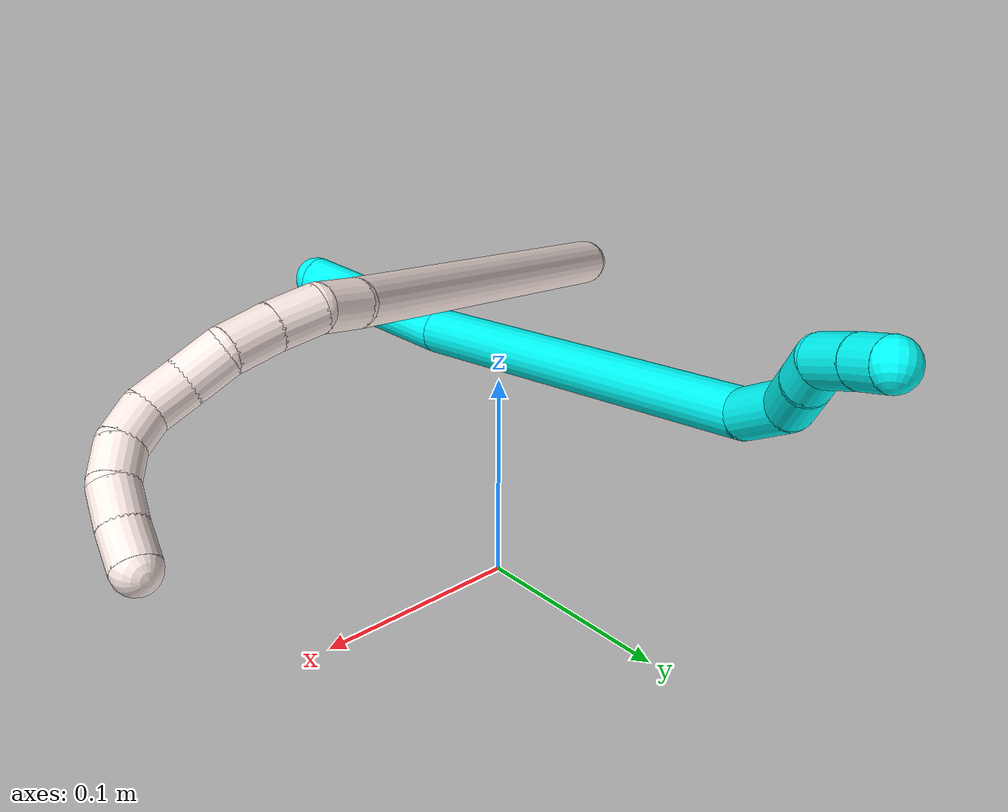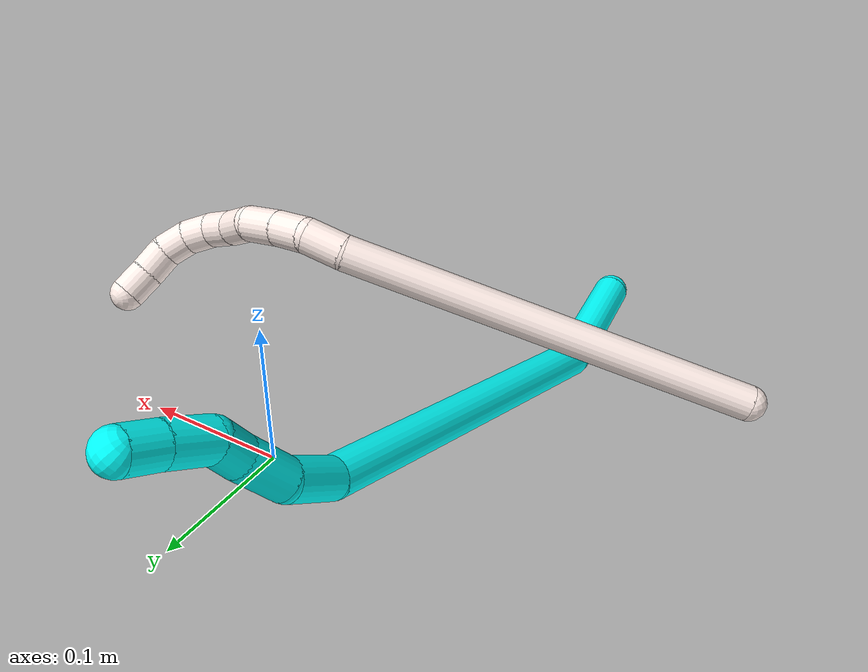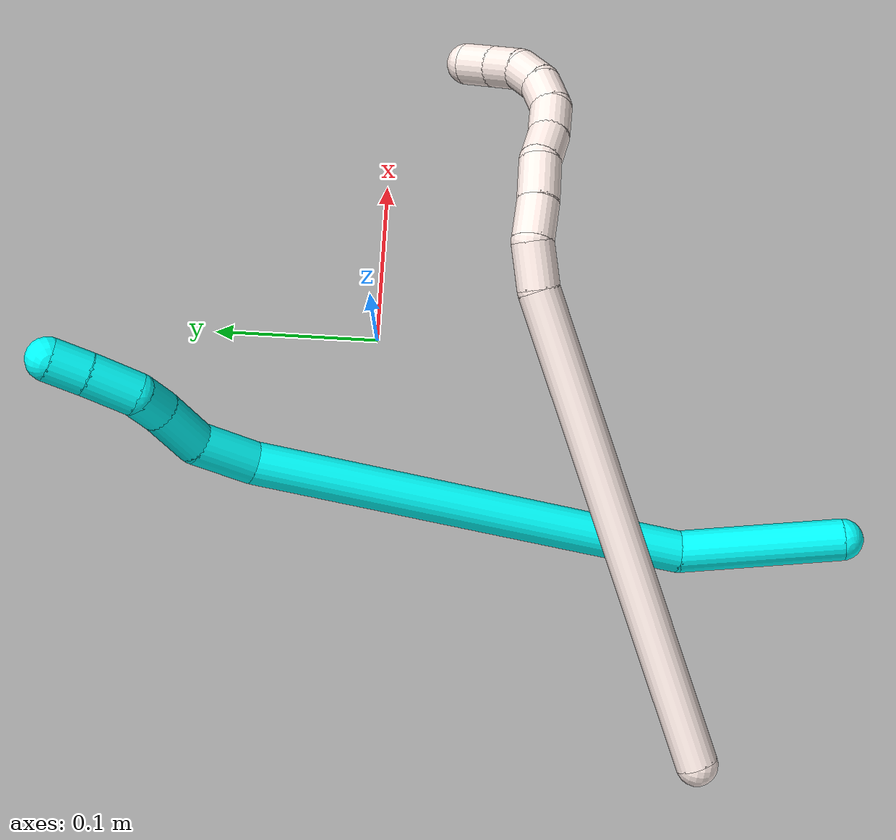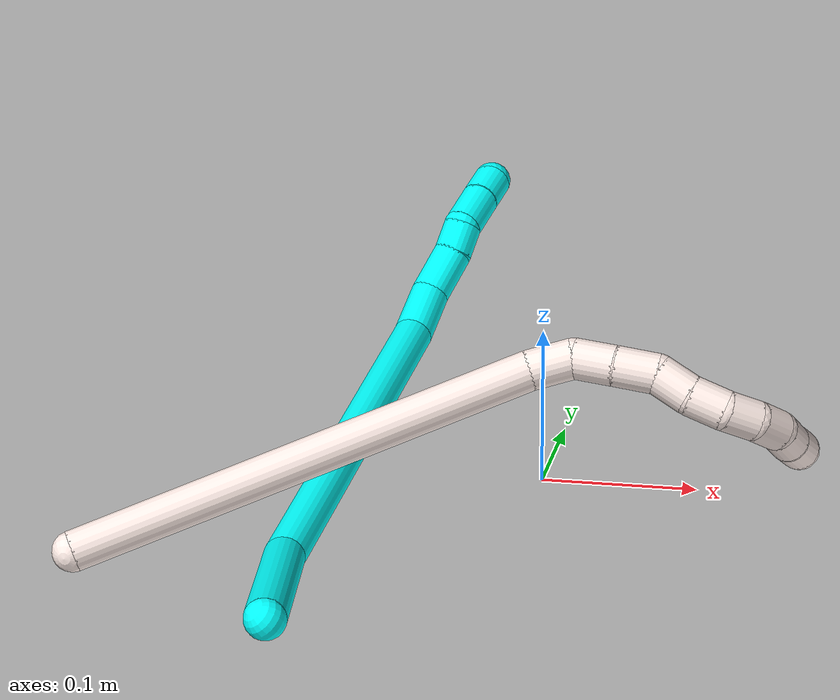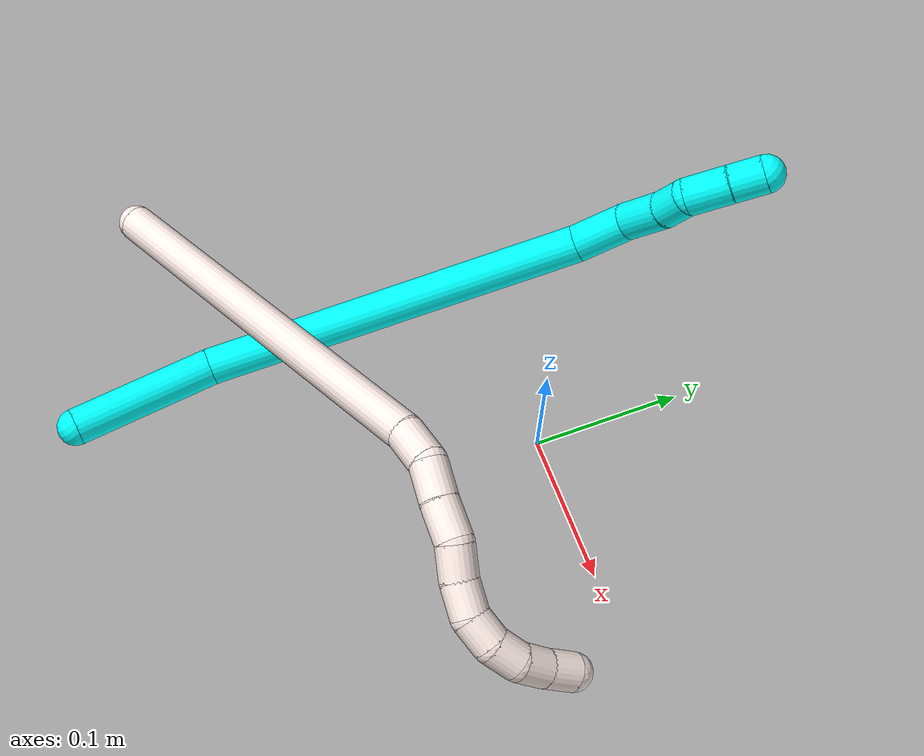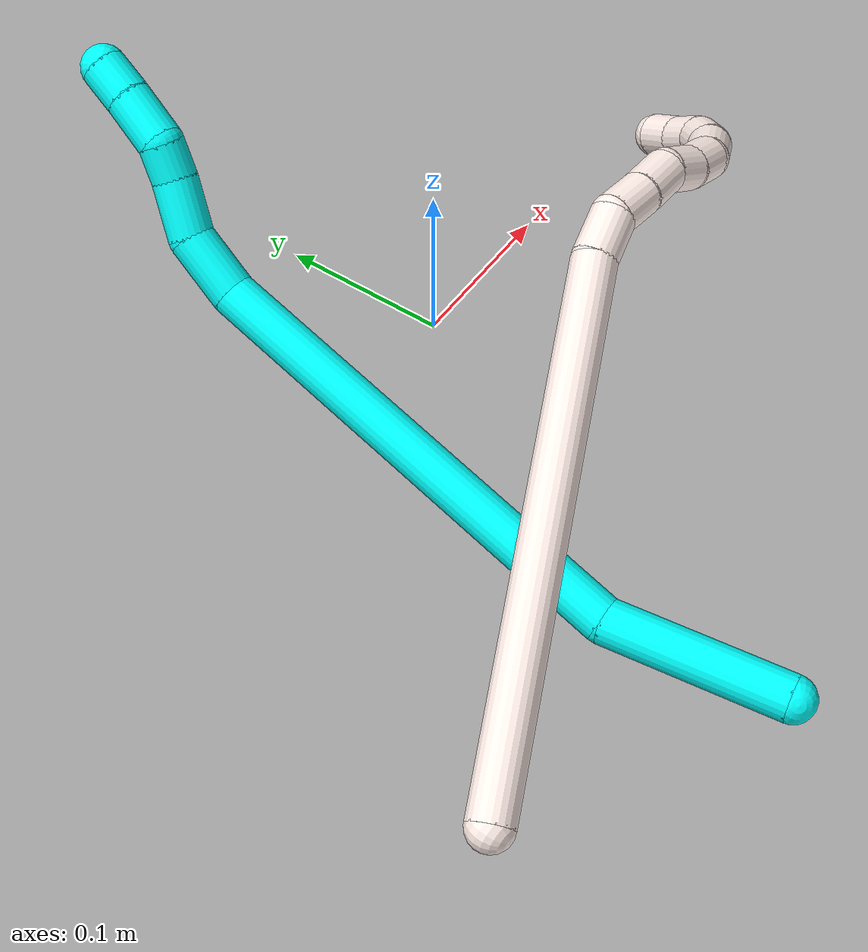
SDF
<sdf version="1.7">
 <world name="default">
  <model name="3">
   <static>0</static>
   <link name="3">
    <collision name="collision-cylinder-e_1_1_4">
     <pose>-0.019067 0.040838 -0.02015 -2.02916 -0.396524 0.625123</pose>
     <geometry><cylinder><radius>0.0125</radius><length>0.098738</length></cylinder></geometry>
     <surface>
      <friction><ode><mu>1.16</mu><mu2>1.16</mu2><slip1>0</slip1><slip2>0</slip2></ode></friction>
      <contact><ode><kp>1e+06</kp><kd>1</kd><max_vel>0</max_vel><min_depth>0.001</min_depth></ode></contact>
     </surface>
    </collision>
    <visual name="visual-cylinder-e_1_1_4">
     <pose>-0.019067 0.040838 -0.02015 -2.02916 -0.396524 0.625123</pose>
     <geometry><cylinder><radius>0.0125</radius><length>0.098738</length></cylinder></geometry>
     <material><ambient>0.003922 1 0.996078 1</ambient></material>
    </visual>
    <collision name="collision-cylinder-e_2_4_5">
     <pose>-0.046374 0.202755 -0.087063 -1.93936 -0.063398 0.092413</pose>
     <geometry><cylinder><radius>0.0125</radius><length>0.260113</length></cylinder></geometry>
     <surface>
      <friction><ode><mu>1.16</mu><mu2>1.16</mu2><slip1>0</slip1><slip2>0</slip2></ode></friction>
      <contact><ode><kp>1e+06</kp><kd>1</kd><max_vel>0</max_vel><min_depth>0.001</min_depth></ode></contact>
     </surface>
    </collision>
    <visual name="visual-cylinder-e_2_4_5">
     <pose>-0.046374 0.202755 -0.087063 -1.93936 -0.063398 0.092413</pose>
     <geometry><cylinder><radius>0.0125</radius><length>0.260113</length></cylinder></geometry>
     <material><ambient>0.003922 1 0.996078 1</ambient></material>
    </visual>
    <collision name="collision-cylinder-e_3_5_6">
     <pose>-0.05177 0.34192 -0.136184 -1.70048 0.154667 -0.176042</pose>
     <geometry><cylinder><radius>0.0125</radius><length>0.03692</length></cylinder></geometry>
     <surface>
      <friction><ode><mu>1.16</mu><mu2>1.16</mu2><slip1>0</slip1><slip2>0</slip2></ode></friction>
      <contact><ode><kp>1e+06</kp><kd>1</kd><max_vel>0</max_vel><min_depth>0.001</min_depth></ode></contact>
     </surface>
    </collision>
    <visual name="visual-cylinder-e_3_5_6">
     <pose>-0.05177 0.34192 -0.136184 -1.70048 0.154667 -0.176042</pose>
     <geometry><cylinder><radius>0.0125</radius><length>0.03692</length></cylinder></geometry>
     <material><ambient>0.003922 1 0.996078 1</ambient></material>
    </visual>
    <collision name="collision-cylinder-e_4_6_7">
     <pose>-0.040688 0.373733 -0.1384 -1.56046 0.540523 -0.535227</pose>
     <geometry><cylinder><radius>0.0125</radius><length>0.032021</length></cylinder></geometry>
     <surface>
      <friction><ode><mu>1.16</mu><mu2>1.16</mu2><slip1>0</slip1><slip2>0</slip2></ode></friction>
      <contact><ode><kp>1e+06</kp><kd>1</kd><max_vel>0</max_vel><min_depth>0.001</min_depth></ode></contact>
     </surface>
    </collision>
    <visual name="visual-cylinder-e_4_6_7">
     <pose>-0.040688 0.373733 -0.1384 -1.56046 0.540523 -0.535227</pose>
     <geometry><cylinder><radius>0.0125</radius><length>0.032021</length></cylinder></geometry>
     <material><ambient>0.003922 1 0.996078 1</ambient></material>
    </visual>
    <collision name="collision-cylinder-e_5_7_8">
     <pose>-0.02798 0.396386 -0.13677 -1.40552 0.458734 -0.390477</pose>
     <geometry><cylinder><radius>0.0125</radius><length>0.020183</length></cylinder></geometry>
     <surface>
      <friction><ode><mu>1.16</mu><mu2>1.16</mu2><slip1>0</slip1><slip2>0</slip2></ode></friction>
      <contact><ode><kp>1e+06</kp><kd>1</kd><max_vel>0</max_vel><min_depth>0.001</min_depth></ode></contact>
     </surface>
    </collision>
    <visual name="visual-cylinder-e_5_7_8">
     <pose>-0.02798 0.396386 -0.13677 -1.40552 0.458734 -0.390477</pose>
     <geometry><cylinder><radius>0.0125</radius><length>0.020183</length></cylinder></geometry>
     <material><ambient>0.003922 1 0.996078 1</ambient></material>
    </visual>
    <collision name="collision-cylinder-e_6_8_9">
     <pose>-0.021178 0.419371 -0.139355 -1.85282 0.158102 -0.210078</pose>
     <geometry><cylinder><radius>0.0125</radius><length>0.029648</length></cylinder></geometry>
     <surface>
      <friction><ode><mu>1.16</mu><mu2>1.16</mu2><slip1>0</slip1><slip2>0</slip2></ode></friction>
      <contact><ode><kp>1e+06</kp><kd>1</kd><max_vel>0</max_vel><min_depth>0.001</min_depth></ode></contact>
     </surface>
    </collision>
    <visual name="visual-cylinder-e_6_8_9">
     <pose>-0.021178 0.419371 -0.139355 -1.85282 0.158102 -0.210078</pose>
     <geometry><cylinder><radius>0.0125</radius><length>0.029648</length></cylinder></geometry>
     <material><ambient>0.003922 1 0.996078 1</ambient></material>
    </visual>
    <collision name="collision-cylinder-e_7_9_2">
     <pose>-0.017539 0.444005 -0.146849 -1.88357 0.116841 -0.160423</pose>
     <geometry><cylinder><radius>0.0125</radius><length>0.022377</length></cylinder></geometry>
     <surface>
      <friction><ode><mu>1.16</mu><mu2>1.16</mu2><slip1>0</slip1><slip2>0</slip2></ode></friction>
      <contact><ode><kp>1e+06</kp><kd>1</kd><max_vel>0</max_vel><min_depth>0.001</min_depth></ode></contact>
     </surface>
    </collision>
    <visual name="visual-cylinder-e_7_9_2">
     <pose>-0.017539 0.444005 -0.146849 -1.88357 0.116841 -0.160423</pose>
     <geometry><cylinder><radius>0.0125</radius><length>0.022377</length></cylinder></geometry>
     <material><ambient>0.003922 1 0.996078 1</ambient></material>
    </visual>
    <collision name="collision-sphere-2">
     <pose>-0.016235 0.454578 -0.150268 0 -0 0</pose>
     <geometry><sphere><radius>0.0125</radius></sphere></geometry>
     <surface>
      <friction><ode><mu>1.16</mu><mu2>1.16</mu2><slip1>0</slip1><slip2>0</slip2></ode></friction>
      <contact><ode><kp>1e+06</kp><kd>1</kd><max_vel>0</max_vel><min_depth>0.001</min_depth></ode></contact>
     </surface>
    </collision>
    <visual name="visual-sphere-2">
     <pose>-0.016235 0.454578 -0.150268 0 -0 0</pose>
     <geometry><sphere><radius>0.0125</radius></sphere></geometry>
     <material><ambient>0.003922 1 0.996078 1</ambient></material>
    </visual>
    <collision name="collision-sphere-9">
     <pose>-0.018844 0.433432 -0.143429 0 -0 0</pose>
     <geometry><sphere><radius>0.0125</radius></sphere></geometry>
     <surface>
      <friction><ode><mu>1.16</mu><mu2>1.16</mu2><slip1>0</slip1><slip2>0</slip2></ode></friction>
      <contact><ode><kp>1e+06</kp><kd>1</kd><max_vel>0</max_vel><min_depth>0.001</min_depth></ode></contact>
     </surface>
    </collision>
    <visual name="visual-sphere-9">
     <pose>-0.018844 0.433432 -0.143429 0 -0 0</pose>
     <geometry><sphere><radius>0.0125</radius></sphere></geometry>
     <material><ambient>0.003922 1 0.996078 1</ambient></material>
    </visual>
    <collision name="collision-sphere-4">
     <pose>-0.038134 0.081676 -0.0403 0 -0 0</pose>
     <geometry><sphere><radius>0.0125</radius></sphere></geometry>
     <surface>
      <friction><ode><mu>1.16</mu><mu2>1.16</mu2><slip1>0</slip1><slip2>0</slip2></ode></friction>
      <contact><ode><kp>1e+06</kp><kd>1</kd><max_vel>0</max_vel><min_depth>0.001</min_depth></ode></contact>
     </surface>
    </collision>
    <visual name="visual-sphere-4">
     <pose>-0.038134 0.081676 -0.0403 0 -0 0</pose>
     <geometry><sphere><radius>0.0125</radius></sphere></geometry>
     <material><ambient>0.003922 1 0.996078 1</ambient></material>
    </visual>
    <collision name="collision-sphere-1">
     <geometry><sphere><radius>0.0125</radius></sphere></geometry>
     <surface>
      <friction><ode><mu>1.16</mu><mu2>1.16</mu2><slip1>0</slip1><slip2>0</slip2></ode></friction>
      <contact><ode><kp>1e+06</kp><kd>1</kd><max_vel>0</max_vel><min_depth>0.001</min_depth></ode></contact>
     </surface>
    </collision>
    <visual name="visual-sphere-1">
     <geometry><sphere><radius>0.0125</radius></sphere></geometry>
     <material><ambient>0.003922 1 0.996078 1</ambient></material>
    </visual>
    <collision name="collision-sphere-8">
     <pose>-0.023511 0.40531 -0.135281 0 -0 0</pose>
     <geometry><sphere><radius>0.0125</radius></sphere></geometry>
     <surface>
      <friction><ode><mu>1.16</mu><mu2>1.16</mu2><slip1>0</slip1><slip2>0</slip2></ode></friction>
      <contact><ode><kp>1e+06</kp><kd>1</kd><max_vel>0</max_vel><min_depth>0.001</min_depth></ode></contact>
     </surface>
    </collision>
    <visual name="visual-sphere-8">
     <pose>-0.023511 0.40531 -0.135281 0 -0 0</pose>
     <geometry><sphere><radius>0.0125</radius></sphere></geometry>
     <material><ambient>0.003922 1 0.996078 1</ambient></material>
    </visual>
    <collision name="collision-sphere-5">
     <pose>-0.054614 0.323833 -0.133825 0 -0 0</pose>
     <geometry><sphere><radius>0.0125</radius></sphere></geometry>
     <surface>
      <friction><ode><mu>1.16</mu><mu2>1.16</mu2><slip1>0</slip1><slip2>0</slip2></ode></friction>
      <contact><ode><kp>1e+06</kp><kd>1</kd><max_vel>0</max_vel><min_depth>0.001</min_depth></ode></contact>
     </surface>
    </collision>
    <visual name="visual-sphere-5">
     <pose>-0.054614 0.323833 -0.133825 0 -0 0</pose>
     <geometry><sphere><radius>0.0125</radius></sphere></geometry>
     <material><ambient>0.003922 1 0.996078 1</ambient></material>
    </visual>
    <collision name="collision-sphere-6">
     <pose>-0.048926 0.360006 -0.138542 0 -0 0</pose>
     <geometry><sphere><radius>0.0125</radius></sphere></geometry>
     <surface>
      <friction><ode><mu>1.16</mu><mu2>1.16</mu2><slip1>0</slip1><slip2>0</slip2></ode></friction>
      <contact><ode><kp>1e+06</kp><kd>1</kd><max_vel>0</max_vel><min_depth>0.001</min_depth></ode></contact>
     </surface>
    </collision>
    <visual name="visual-sphere-6">
     <pose>-0.048926 0.360006 -0.138542 0 -0 0</pose>
     <geometry><sphere><radius>0.0125</radius></sphere></geometry>
     <material><ambient>0.003922 1 0.996078 1</ambient></material>
    </visual>
    <collision name="collision-sphere-7">
     <pose>-0.032449 0.387461 -0.138258 0 -0 0</pose>
     <geometry><sphere><radius>0.0125</radius></sphere></geometry>
     <surface>
      <friction><ode><mu>1.16</mu><mu2>1.16</mu2><slip1>0</slip1><slip2>0</slip2></ode></friction>
      <contact><ode><kp>1e+06</kp><kd>1</kd><max_vel>0</max_vel><min_depth>0.001</min_depth></ode></contact>
     </surface>
    </collision>
    <visual name="visual-sphere-7">
     <pose>-0.032449 0.387461 -0.138258 0 -0 0</pose>
     <geometry><sphere><radius>0.0125</radius></sphere></geometry>
     <material><ambient>0.003922 1 0.996078 1</ambient></material>
    </visual>
    <inertial>
     <pose>-0.037489 0.223463 -0.088547 0 -0 0</pose>
     <mass>0.5</mass>
     <inertia>
      <ixx>0.001721</ixx>
      <ixy>0</ixy>
      <ixz>0</ixz>
      <iyy>-0.000322</iyy>
      <iyz>0</iyz>
      <izz>-0.001349</izz>
     </inertia>
    </inertial>
   </link>
   <pose>-0.111068 -0.28748 0.013923 0.681851 -0.521368 -0.322937</pose>
  </model>
  <model name="11">
   <static>0</static>
   <link name="11">
    <collision name="collision-cylinder-e_1_1_4">
     <pose>0.107671 0.06979 -0.070346 -2.36016 0.826866 -1.63385</pose>
     <geometry><cylinder><radius>0.0125</radius><length>0.292659</length></cylinder></geometry>
     <surface>
      <friction><ode><mu>1.16</mu><mu2>1.16</mu2><slip1>0</slip1><slip2>0</slip2></ode></friction>
      <contact><ode><kp>1e+06</kp><kd>1</kd><max_vel>0</max_vel><min_depth>0.001</min_depth></ode></contact>
     </surface>
    </collision>
    <visual name="visual-cylinder-e_1_1_4">
     <pose>0.107671 0.06979 -0.070346 -2.36016 0.826866 -1.63385</pose>
     <geometry><cylinder><radius>0.0125</radius><length>0.292659</length></cylinder></geometry>
     <material><ambient>1 0.933333 0.909804 1</ambient></material>
    </visual>
    <collision name="collision-cylinder-e_2_4_5">
     <pose>0.226957 0.146006 -0.144892 -2.14973 0.986804 -1.56474</pose>
     <geometry><cylinder><radius>0.0125</radius><length>0.027843</length></cylinder></geometry>
     <surface>
      <friction><ode><mu>1.16</mu><mu2>1.16</mu2><slip1>0</slip1><slip2>0</slip2></ode></friction>
      <contact><ode><kp>1e+06</kp><kd>1</kd><max_vel>0</max_vel><min_depth>0.001</min_depth></ode></contact>
     </surface>
    </collision>
    <visual name="visual-cylinder-e_2_4_5">
     <pose>0.226957 0.146006 -0.144892 -2.14973 0.986804 -1.56474</pose>
     <geometry><cylinder><radius>0.0125</radius><length>0.027843</length></cylinder></geometry>
     <material><ambient>1 0.933333 0.909804 1</ambient></material>
    </visual>
    <collision name="collision-cylinder-e_3_5_6">
     <pose>0.251085 0.153959 -0.149483 -1.82152 1.4454 -1.69812</pose>
     <geometry><cylinder><radius>0.0125</radius><length>0.025226</length></cylinder></geometry>
     <surface>
      <friction><ode><mu>1.16</mu><mu2>1.16</mu2><slip1>0</slip1><slip2>0</slip2></ode></friction>
      <contact><ode><kp>1e+06</kp><kd>1</kd><max_vel>0</max_vel><min_depth>0.001</min_depth></ode></contact>
     </surface>
    </collision>
    <visual name="visual-cylinder-e_3_5_6">
     <pose>0.251085 0.153959 -0.149483 -1.82152 1.4454 -1.69812</pose>
     <geometry><cylinder><radius>0.0125</radius><length>0.025226</length></cylinder></geometry>
     <material><ambient>1 0.933333 0.909804 1</ambient></material>
    </visual>
    <collision name="collision-cylinder-e_4_6_7">
     <pose>0.27671 0.156581 -0.151293 -2.48486 1.43497 -2.39713</pose>
     <geometry><cylinder><radius>0.0125</radius><length>0.026466</length></cylinder></geometry>
     <surface>
      <friction><ode><mu>1.16</mu><mu2>1.16</mu2><slip1>0</slip1><slip2>0</slip2></ode></friction>
      <contact><ode><kp>1e+06</kp><kd>1</kd><max_vel>0</max_vel><min_depth>0.001</min_depth></ode></contact>
     </surface>
    </collision>
    <visual name="visual-cylinder-e_4_6_7">
     <pose>0.27671 0.156581 -0.151293 -2.48486 1.43497 -2.39713</pose>
     <geometry><cylinder><radius>0.0125</radius><length>0.026466</length></cylinder></geometry>
     <material><ambient>1 0.933333 0.909804 1</ambient></material>
    </visual>
    <collision name="collision-cylinder-e_5_7_8">
     <pose>0.30089 0.154736 -0.151539 1.19082 1.29235 0.944658</pose>
     <geometry><cylinder><radius>0.0125</radius><length>0.023026</length></cylinder></geometry>
     <surface>
      <friction><ode><mu>1.16</mu><mu2>1.16</mu2><slip1>0</slip1><slip2>0</slip2></ode></friction>
      <contact><ode><kp>1e+06</kp><kd>1</kd><max_vel>0</max_vel><min_depth>0.001</min_depth></ode></contact>
     </surface>
    </collision>
    <visual name="visual-cylinder-e_5_7_8">
     <pose>0.30089 0.154736 -0.151539 1.19082 1.29235 0.944658</pose>
     <geometry><cylinder><radius>0.0125</radius><length>0.023026</length></cylinder></geometry>
     <material><ambient>1 0.933333 0.909804 1</ambient></material>
    </visual>
    <collision name="collision-cylinder-e_6_8_9">
     <pose>0.323013 0.15024 -0.151026 1.97232 1.41889 1.82818</pose>
     <geometry><cylinder><radius>0.0125</radius><length>0.022365</length></cylinder></geometry>
     <surface>
      <friction><ode><mu>1.16</mu><mu2>1.16</mu2><slip1>0</slip1><slip2>0</slip2></ode></friction>
      <contact><ode><kp>1e+06</kp><kd>1</kd><max_vel>0</max_vel><min_depth>0.001</min_depth></ode></contact>
     </surface>
    </collision>
    <visual name="visual-cylinder-e_6_8_9">
     <pose>0.323013 0.15024 -0.151026 1.97232 1.41889 1.82818</pose>
     <geometry><cylinder><radius>0.0125</radius><length>0.022365</length></cylinder></geometry>
     <material><ambient>1 0.933333 0.909804 1</ambient></material>
    </visual>
    <collision name="collision-cylinder-e_7_9_10">
     <pose>0.343238 0.146644 -0.156095 2.70831 1.08388 2.44065</pose>
     <geometry><cylinder><radius>0.0125</radius><length>0.020755</length></cylinder></geometry>
     <surface>
      <friction><ode><mu>1.16</mu><mu2>1.16</mu2><slip1>0</slip1><slip2>0</slip2></ode></friction>
      <contact><ode><kp>1e+06</kp><kd>1</kd><max_vel>0</max_vel><min_depth>0.001</min_depth></ode></contact>
     </surface>
    </collision>
    <visual name="visual-cylinder-e_7_9_10">
     <pose>0.343238 0.146644 -0.156095 2.70831 1.08388 2.44065</pose>
     <geometry><cylinder><radius>0.0125</radius><length>0.020755</length></cylinder></geometry>
     <material><ambient>1 0.933333 0.909804 1</ambient></material>
    </visual>
    <collision name="collision-cylinder-e_8_10_11">
     <pose>0.359013 0.140936 -0.167199 2.64047 0.712909 1.93723</pose>
     <geometry><cylinder><radius>0.0125</radius><length>0.020191</length></cylinder></geometry>
     <surface>
      <friction><ode><mu>1.16</mu><mu2>1.16</mu2><slip1>0</slip1><slip2>0</slip2></ode></friction>
      <contact><ode><kp>1e+06</kp><kd>1</kd><max_vel>0</max_vel><min_depth>0.001</min_depth></ode></contact>
     </surface>
    </collision>
    <visual name="visual-cylinder-e_8_10_11">
     <pose>0.359013 0.140936 -0.167199 2.64047 0.712909 1.93723</pose>
     <geometry><cylinder><radius>0.0125</radius><length>0.020191</length></cylinder></geometry>
     <material><ambient>1 0.933333 0.909804 1</ambient></material>
    </visual>
    <collision name="collision-cylinder-e_9_11_12">
     <pose>0.369079 0.131448 -0.181729 2.50256 0.341062 0.959801</pose>
     <geometry><cylinder><radius>0.0125</radius><length>0.020707</length></cylinder></geometry>
     <surface>
      <friction><ode><mu>1.16</mu><mu2>1.16</mu2><slip1>0</slip1><slip2>0</slip2></ode></friction>
      <contact><ode><kp>1e+06</kp><kd>1</kd><max_vel>0</max_vel><min_depth>0.001</min_depth></ode></contact>
     </surface>
    </collision>
    <visual name="visual-cylinder-e_9_11_12">
     <pose>0.369079 0.131448 -0.181729 2.50256 0.341062 0.959801</pose>
     <geometry><cylinder><radius>0.0125</radius><length>0.020707</length></cylinder></geometry>
     <material><ambient>1 0.933333 0.909804 1</ambient></material>
    </visual>
    <collision name="collision-cylinder-e_10_12_2">
     <pose>0.375353 0.120516 -0.198147 2.60459 0.274227 0.929657</pose>
     <geometry><cylinder><radius>0.0125</radius><length>0.020763</length></cylinder></geometry>
     <surface>
      <friction><ode><mu>1.16</mu><mu2>1.16</mu2><slip1>0</slip1><slip2>0</slip2></ode></friction>
      <contact><ode><kp>1e+06</kp><kd>1</kd><max_vel>0</max_vel><min_depth>0.001</min_depth></ode></contact>
     </surface>
    </collision>
    <visual name="visual-cylinder-e_10_12_2">
     <pose>0.375353 0.120516 -0.198147 2.60459 0.274227 0.929657</pose>
     <geometry><cylinder><radius>0.0125</radius><length>0.020763</length></cylinder></geometry>
     <material><ambient>1 0.933333 0.909804 1</ambient></material>
    </visual>
    <collision name="collision-sphere-2">
     <pose>0.378164 0.115404 -0.206734 0 -0 0</pose>
     <geometry><sphere><radius>0.0125</radius></sphere></geometry>
     <surface>
      <friction><ode><mu>1.16</mu><mu2>1.16</mu2><slip1>0</slip1><slip2>0</slip2></ode></friction>
      <contact><ode><kp>1e+06</kp><kd>1</kd><max_vel>0</max_vel><min_depth>0.001</min_depth></ode></contact>
     </surface>
    </collision>
    <visual name="visual-sphere-2">
     <pose>0.378164 0.115404 -0.206734 0 -0 0</pose>
     <geometry><sphere><radius>0.0125</radius></sphere></geometry>
     <material><ambient>1 0.933333 0.909804 1</ambient></material>
    </visual>
    <collision name="collision-sphere-12">
     <pose>0.372542 0.125629 -0.189561 0 -0 0</pose>
     <geometry><sphere><radius>0.0125</radius></sphere></geometry>
     <surface>
      <friction><ode><mu>1.16</mu><mu2>1.16</mu2><slip1>0</slip1><slip2>0</slip2></ode></friction>
      <contact><ode><kp>1e+06</kp><kd>1</kd><max_vel>0</max_vel><min_depth>0.001</min_depth></ode></contact>
     </surface>
    </collision>
    <visual name="visual-sphere-12">
     <pose>0.372542 0.125629 -0.189561 0 -0 0</pose>
     <geometry><sphere><radius>0.0125</radius></sphere></geometry>
     <material><ambient>1 0.933333 0.909804 1</ambient></material>
    </visual>
    <collision name="collision-sphere-11">
     <pose>0.365615 0.137267 -0.173897 0 -0 0</pose>
     <geometry><sphere><radius>0.0125</radius></sphere></geometry>
     <surface>
      <friction><ode><mu>1.16</mu><mu2>1.16</mu2><slip1>0</slip1><slip2>0</slip2></ode></friction>
      <contact><ode><kp>1e+06</kp><kd>1</kd><max_vel>0</max_vel><min_depth>0.001</min_depth></ode></contact>
     </surface>
    </collision>
    <visual name="visual-sphere-11">
     <pose>0.365615 0.137267 -0.173897 0 -0 0</pose>
     <geometry><sphere><radius>0.0125</radius></sphere></geometry>
     <material><ambient>1 0.933333 0.909804 1</ambient></material>
    </visual>
    <collision name="collision-sphere-10">
     <pose>0.35241 0.144605 -0.160502 0 -0 0</pose>
     <geometry><sphere><radius>0.0125</radius></sphere></geometry>
     <surface>
      <friction><ode><mu>1.16</mu><mu2>1.16</mu2><slip1>0</slip1><slip2>0</slip2></ode></friction>
      <contact><ode><kp>1e+06</kp><kd>1</kd><max_vel>0</max_vel><min_depth>0.001</min_depth></ode></contact>
     </surface>
    </collision>
    <visual name="visual-sphere-10">
     <pose>0.35241 0.144605 -0.160502 0 -0 0</pose>
     <geometry><sphere><radius>0.0125</radius></sphere></geometry>
     <material><ambient>1 0.933333 0.909804 1</ambient></material>
    </visual>
    <collision name="collision-sphere-9">
     <pose>0.334067 0.148682 -0.151688 0 -0 0</pose>
     <geometry><sphere><radius>0.0125</radius></sphere></geometry>
     <surface>
      <friction><ode><mu>1.16</mu><mu2>1.16</mu2><slip1>0</slip1><slip2>0</slip2></ode></friction>
      <contact><ode><kp>1e+06</kp><kd>1</kd><max_vel>0</max_vel><min_depth>0.001</min_depth></ode></contact>
     </surface>
    </collision>
    <visual name="visual-sphere-9">
     <pose>0.334067 0.148682 -0.151688 0 -0 0</pose>
     <geometry><sphere><radius>0.0125</radius></sphere></geometry>
     <material><ambient>1 0.933333 0.909804 1</ambient></material>
    </visual>
    <collision name="collision-sphere-4">
     <pose>0.215342 0.139581 -0.140692 0 -0 0</pose>
     <geometry><sphere><radius>0.0125</radius></sphere></geometry>
     <surface>
      <friction><ode><mu>1.16</mu><mu2>1.16</mu2><slip1>0</slip1><slip2>0</slip2></ode></friction>
      <contact><ode><kp>1e+06</kp><kd>1</kd><max_vel>0</max_vel><min_depth>0.001</min_depth></ode></contact>
     </surface>
    </collision>
    <visual name="visual-sphere-4">
     <pose>0.215342 0.139581 -0.140692 0 -0 0</pose>
     <geometry><sphere><radius>0.0125</radius></sphere></geometry>
     <material><ambient>1 0.933333 0.909804 1</ambient></material>
    </visual>
    <collision name="collision-sphere-1">
     <geometry><sphere><radius>0.0125</radius></sphere></geometry>
     <surface>
      <friction><ode><mu>1.16</mu><mu2>1.16</mu2><slip1>0</slip1><slip2>0</slip2></ode></friction>
      <contact><ode><kp>1e+06</kp><kd>1</kd><max_vel>0</max_vel><min_depth>0.001</min_depth></ode></contact>
     </surface>
    </collision>
    <visual name="visual-sphere-1">
     <geometry><sphere><radius>0.0125</radius></sphere></geometry>
     <material><ambient>1 0.933333 0.909804 1</ambient></material>
    </visual>
    <collision name="collision-sphere-8">
     <pose>0.31196 0.151797 -0.150365 0 -0 0</pose>
     <geometry><sphere><radius>0.0125</radius></sphere></geometry>
     <surface>
      <friction><ode><mu>1.16</mu><mu2>1.16</mu2><slip1>0</slip1><slip2>0</slip2></ode></friction>
      <contact><ode><kp>1e+06</kp><kd>1</kd><max_vel>0</max_vel><min_depth>0.001</min_depth></ode></contact>
     </surface>
    </collision>
    <visual name="visual-sphere-8">
     <pose>0.31196 0.151797 -0.150365 0 -0 0</pose>
     <geometry><sphere><radius>0.0125</radius></sphere></geometry>
     <material><ambient>1 0.933333 0.909804 1</ambient></material>
    </visual>
    <collision name="collision-sphere-5">
     <pose>0.238571 0.152431 -0.149091 0 -0 0</pose>
     <geometry><sphere><radius>0.0125</radius></sphere></geometry>
     <surface>
      <friction><ode><mu>1.16</mu><mu2>1.16</mu2><slip1>0</slip1><slip2>0</slip2></ode></friction>
      <contact><ode><kp>1e+06</kp><kd>1</kd><max_vel>0</max_vel><min_depth>0.001</min_depth></ode></contact>
     </surface>
    </collision>
    <visual name="visual-sphere-5">
     <pose>0.238571 0.152431 -0.149091 0 -0 0</pose>
     <geometry><sphere><radius>0.0125</radius></sphere></geometry>
     <material><ambient>1 0.933333 0.909804 1</ambient></material>
    </visual>
    <collision name="collision-sphere-6">
     <pose>0.263598 0.155487 -0.149874 0 -0 0</pose>
     <geometry><sphere><radius>0.0125</radius></sphere></geometry>
     <surface>
      <friction><ode><mu>1.16</mu><mu2>1.16</mu2><slip1>0</slip1><slip2>0</slip2></ode></friction>
      <contact><ode><kp>1e+06</kp><kd>1</kd><max_vel>0</max_vel><min_depth>0.001</min_depth></ode></contact>
     </surface>
    </collision>
    <visual name="visual-sphere-6">
     <pose>0.263598 0.155487 -0.149874 0 -0 0</pose>
     <geometry><sphere><radius>0.0125</radius></sphere></geometry>
     <material><ambient>1 0.933333 0.909804 1</ambient></material>
    </visual>
    <collision name="collision-sphere-7">
     <pose>0.289821 0.157675 -0.152712 0 -0 0</pose>
     <geometry><sphere><radius>0.0125</radius></sphere></geometry>
     <surface>
      <friction><ode><mu>1.16</mu><mu2>1.16</mu2><slip1>0</slip1><slip2>0</slip2></ode></friction>
      <contact><ode><kp>1e+06</kp><kd>1</kd><max_vel>0</max_vel><min_depth>0.001</min_depth></ode></contact>
     </surface>
    </collision>
    <visual name="visual-sphere-7">
     <pose>0.289821 0.157675 -0.152712 0 -0 0</pose>
     <geometry><sphere><radius>0.0125</radius></sphere></geometry>
     <material><ambient>1 0.933333 0.909804 1</ambient></material>
    </visual>
    <inertial>
     <pose>0.190896 0.101108 -0.107513 0 -0 0</pose>
     <mass>0.5</mass>
     <inertia>
      <ixx>-0.001476</ixx>
      <ixy>0</ixy>
      <ixz>0</ixz>
      <iyy>-0.000216</iyy>
      <iyz>0</iyz>
      <izz>-0.002576</izz>
     </inertia>
    </inertial>
   </link>
   <pose>-0.249119 -0.204658 0.011846 1.60968 0.224304 -0.108202</pose>
  </model>
 </world>
</sdf>
